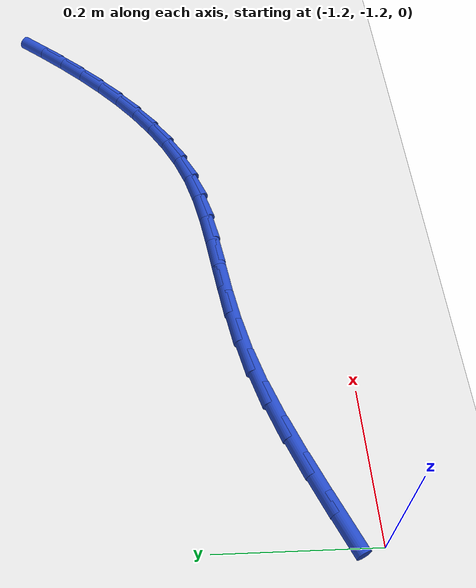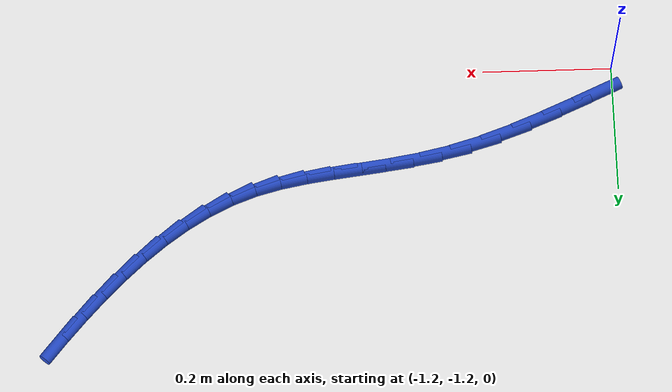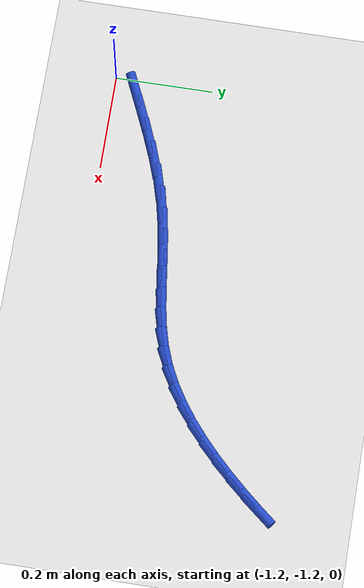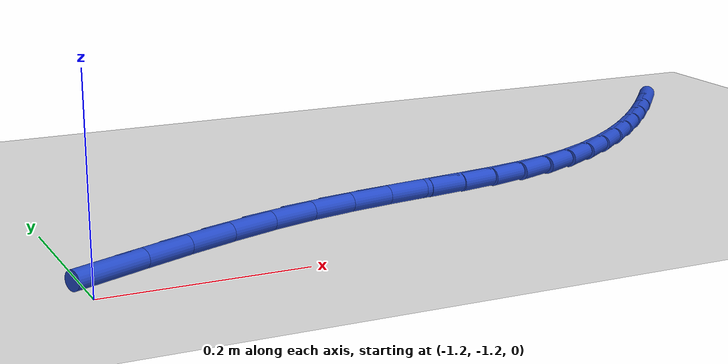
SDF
<sdf version="1.6">
 <world name="default">
  <model name="ground_plane">
   <static>1</static>
   <link name="link">
    <collision name="collision">
     <geometry><plane><normal>0 0 1</normal><size>100 100</size></plane></geometry>
     <surface><friction><ode><mu>100</mu><mu2>50</mu2></ode></friction></surface>
    </collision>
    <visual name="visual">
     <cast_shadows>0</cast_shadows>
     <geometry><plane><normal>0 0 1</normal><size>100 100</size></plane></geometry>
     <material>
      <script><uri>file://media/materials/scripts/gazebo.material</uri><name>Gazebo/WhiteGlow</name></script>
     </material>
    </visual>
   </link>
  </model>
  <model name="line">
   <link name="link_129">
    <pose>-1.174696860551929 -1.1556610961748601 0.01 0 1.57 0.42342281866971737</pose>
    <collision name="collision">
     <geometry><cylinder><radius>0.01</radius><length>0.08</length></cylinder></geometry>
    </collision>
    <visual name="visual">
     <material>
      <script><name>Gazebo/Blue</name><uri>file://media/materials/scripts/gazebo.material</uri></script>
     </material>
     <geometry><cylinder><radius>0.01</radius><length>0.08</length></cylinder></geometry>
    </visual>
   </link>
   <link name="link_130">
    <pose>-1.12668299162848 -1.1340220007801287 0.01 0 1.57 0.41097470097350264</pose>
    <collision name="collision">
     <geometry><cylinder><radius>0.01</radius><length>0.08</length></cylinder></geometry>
    </collision>
    <visual name="visual">
     <material>
      <script><name>Gazebo/Blue</name><uri>file://media/materials/scripts/gazebo.material</uri></script>
     </material>
     <geometry><cylinder><radius>0.01</radius><length>0.08</length></cylinder></geometry>
    </visual>
   </link>
   <link name="link_131">
    <pose>-1.0783632725105083 -1.1129647251503423 0.01 0 1.57 0.38424752020211056</pose>
    <collision name="collision">
     <geometry><cylinder><radius>0.01</radius><length>0.08</length></cylinder></geometry>
    </collision>
    <visual name="visual">
     <material>
      <script><name>Gazebo/Blue</name><uri>file://media/materials/scripts/gazebo.material</uri></script>
     </material>
     <geometry><cylinder><radius>0.01</radius><length>0.08</length></cylinder></geometry>
    </visual>
   </link>
   <link name="link_132">
    <pose>-1.0301511296717447 -1.0934703259775171 0.01 0 1.57 0.3414966517541293</pose>
    <collision name="collision">
     <geometry><cylinder><radius>0.01</radius><length>0.08</length></cylinder></geometry>
    </collision>
    <visual name="visual">
     <material>
      <script><name>Gazebo/Blue</name><uri>file://media/materials/scripts/gazebo.material</uri></script>
     </material>
     <geometry><cylinder><radius>0.01</radius><length>0.08</length></cylinder></geometry>
    </visual>
   </link>
   <link name="link_133">
    <pose>-0.9824599895859162 -1.0765198599536692 0.01 0 1.57 0.28022602365844973</pose>
    <collision name="collision">
     <geometry><cylinder><radius>0.01</radius><length>0.08</length></cylinder></geometry>
    </collision>
    <visual name="visual">
     <material>
      <script><name>Gazebo/Blue</name><uri>file://media/materials/scripts/gazebo.material</uri></script>
     </material>
     <geometry><cylinder><radius>0.01</radius><length>0.08</length></cylinder></geometry>
    </visual>
   </link>
   <link name="link_134">
    <pose>-0.9356966319629575 -1.0630614098380091 0.01 0 1.57 0.2145163283223794</pose>
    <collision name="collision">
     <geometry><cylinder><radius>0.01</radius><length>0.08</length></cylinder></geometry>
    </collision>
    <visual name="visual">
     <material>
      <script><name>Gazebo/Blue</name><uri>file://media/materials/scripts/gazebo.material</uri></script>
     </material>
     <geometry><cylinder><radius>0.01</radius><length>0.08</length></cylinder></geometry>
    </visual>
   </link>
   <link name="link_135">
    <pose>-0.8900824796657185 -1.053123521542755 0.01 0 1.57 0.16514277305964997</pose>
    <collision name="collision">
     <geometry><cylinder><radius>0.01</radius><length>0.08</length></cylinder></geometry>
    </collision>
    <visual name="visual">
     <material>
      <script><name>Gazebo/Blue</name><uri>file://media/materials/scripts/gazebo.material</uri></script>
     </material>
     <geometry><cylinder><radius>0.01</radius><length>0.08</length></cylinder></geometry>
    </visual>
   </link>
   <link name="link_136">
    <pose>-0.8456335274415968 -1.045715632570928 0.01 0 1.57 0.13597688428668567</pose>
    <collision name="collision">
     <geometry><cylinder><radius>0.01</radius><length>0.08</length></cylinder></geometry>
    </collision>
    <visual name="visual">
     <material>
      <script><name>Gazebo/Blue</name><uri>file://media/materials/scripts/gazebo.material</uri></script>
     </material>
     <geometry><cylinder><radius>0.01</radius><length>0.08</length></cylinder></geometry>
    </visual>
   </link>
   <link name="link_137">
    <pose>-0.8023550957139709 -1.039794226167811 0.01 0 1.57 0.1293942101523799</pose>
    <collision name="collision">
     <geometry><cylinder><radius>0.01</radius><length>0.08</length></cylinder></geometry>
    </collision>
    <visual name="visual">
     <material>
      <script><name>Gazebo/Blue</name><uri>file://media/materials/scripts/gazebo.material</uri></script>
     </material>
     <geometry><cylinder><radius>0.01</radius><length>0.08</length></cylinder></geometry>
    </visual>
   </link>
   <link name="link_138">
    <pose>-0.7602525049062165 -1.0343157855786875 0.01 0 1.57 0.1474742600798231</pose>
    <collision name="collision">
     <geometry><cylinder><radius>0.01</radius><length>0.08</length></cylinder></geometry>
    </collision>
    <visual name="visual">
     <material>
      <script><name>Gazebo/Blue</name><uri>file://media/materials/scripts/gazebo.material</uri></script>
     </material>
     <geometry><cylinder><radius>0.01</radius><length>0.08</length></cylinder></geometry>
    </visual>
   </link>
   <link name="link_139">
    <pose>-0.7193310754417112 -1.0282367940488406 0.01 0 1.57 0.19197088671320897</pose>
    <collision name="collision">
     <geometry><cylinder><radius>0.01</radius><length>0.08</length></cylinder></geometry>
    </collision>
    <visual name="visual">
     <material>
      <script><name>Gazebo/Blue</name><uri>file://media/materials/scripts/gazebo.material</uri></script>
     </material>
     <geometry><cylinder><radius>0.01</radius><length>0.08</length></cylinder></geometry>
    </visual>
   </link>
   <link name="link_140">
    <pose>-0.6795961277438317 -1.0205137348235536 0.01 0 1.57 0.2638084245488527</pose>
    <collision name="collision">
     <geometry><cylinder><radius>0.01</radius><length>0.08</length></cylinder></geometry>
    </collision>
    <visual name="visual">
     <material>
      <script><name>Gazebo/Blue</name><uri>file://media/materials/scripts/gazebo.material</uri></script>
     </material>
     <geometry><cylinder><radius>0.01</radius><length>0.08</length></cylinder></geometry>
    </visual>
   </link>
   <link name="link_141">
    <pose>-0.6410529822359549 -1.0101030911481095 0.01 0 1.57 0.3604388641304882</pose>
    <collision name="collision">
     <geometry><cylinder><radius>0.01</radius><length>0.08</length></cylinder></geometry>
    </collision>
    <visual name="visual">
     <material>
      <script><name>Gazebo/Blue</name><uri>file://media/materials/scripts/gazebo.material</uri></script>
     </material>
     <geometry><cylinder><radius>0.01</radius><length>0.08</length></cylinder></geometry>
    </visual>
   </link>
   <link name="link_142">
    <pose>-0.6037042129830659 -0.9960261915006842 0.01 0 1.57 0.4598211313779676</pose>
    <collision name="collision">
     <geometry><cylinder><radius>0.01</radius><length>0.08</length></cylinder></geometry>
    </collision>
    <visual name="visual">
     <material>
      <script><name>Gazebo/Blue</name><uri>file://media/materials/scripts/gazebo.material</uri></script>
     </material>
     <geometry><cylinder><radius>0.01</radius><length>0.08</length></cylinder></geometry>
    </visual>
   </link>
   <link name="link_143">
    <pose>-0.5675184404133506 -0.9781060556074604 0.01 0 1.57 0.5477908907885602</pose>
    <collision name="collision">
     <geometry><cylinder><radius>0.01</radius><length>0.08</length></cylinder></geometry>
    </collision>
    <visual name="visual">
     <material>
      <script><name>Gazebo/Blue</name><uri>file://media/materials/scripts/gazebo.material</uri></script>
     </material>
     <geometry><cylinder><radius>0.01</radius><length>0.08</length></cylinder></geometry>
    </visual>
   </link>
   <link name="link_144">
    <pose>-0.5324413767024962 -0.9567065979930446 0.01 0 1.57 0.6241800605756328</pose>
    <collision name="collision">
     <geometry><cylinder><radius>0.01</radius><length>0.08</length></cylinder></geometry>
    </collision>
    <visual name="visual">
     <material>
      <script><name>Gazebo/Blue</name><uri>file://media/materials/scripts/gazebo.material</uri></script>
     </material>
     <geometry><cylinder><radius>0.01</radius><length>0.08</length></cylinder></geometry>
    </visual>
   </link>
   <link name="link_145">
    <pose>-0.49841830453689034 -0.9322018740048049 0.01 0 1.57 0.6896433004394829</pose>
    <collision name="collision">
     <geometry><cylinder><radius>0.01</radius><length>0.08</length></cylinder></geometry>
    </collision>
    <visual name="visual">
     <material>
      <script><name>Gazebo/Blue</name><uri>file://media/materials/scripts/gazebo.material</uri></script>
     </material>
     <geometry><cylinder><radius>0.01</radius><length>0.08</length></cylinder></geometry>
    </visual>
   </link>
   <link name="link_146">
    <pose>-0.46539450660292114 -0.9049659389901102 0.01 0 1.57 0.7451077311073375</pose>
    <collision name="collision">
     <geometry><cylinder><radius>0.01</radius><length>0.08</length></cylinder></geometry>
    </collision>
    <visual name="visual">
     <material>
      <script><name>Gazebo/Blue</name><uri>file://media/materials/scripts/gazebo.material</uri></script>
     </material>
     <geometry><cylinder><radius>0.01</radius><length>0.08</length></cylinder></geometry>
    </visual>
   </link>
   <link name="link_147">
    <pose>-0.4333152655869756 -0.8753728482963286 0.01 0 1.57 0.7915605320273255</pose>
    <collision name="collision">
     <geometry><cylinder><radius>0.01</radius><length>0.08</length></cylinder></geometry>
    </collision>
    <visual name="visual">
     <material>
      <script><name>Gazebo/Blue</name><uri>file://media/materials/scripts/gazebo.material</uri></script>
     </material>
     <geometry><cylinder><radius>0.01</radius><length>0.08</length></cylinder></geometry>
    </visual>
   </link>
   <link name="link_148">
    <pose>-0.40212586417544277 -0.8437966572708293 0.01 0 1.57 0.8299229899232747</pose>
    <collision name="collision">
     <geometry><cylinder><radius>0.01</radius><length>0.08</length></cylinder></geometry>
    </collision>
    <visual name="visual">
     <material>
      <script><name>Gazebo/Blue</name><uri>file://media/materials/scripts/gazebo.material</uri></script>
     </material>
     <geometry><cylinder><radius>0.01</radius><length>0.08</length></cylinder></geometry>
    </visual>
   </link>
   <link name="link_149">
    <pose>-0.3717715850547099 -0.8106114212609806 0.01 0 1.57 0.8609851051592574</pose>
    <collision name="collision">
     <geometry><cylinder><radius>0.01</radius><length>0.08</length></cylinder></geometry>
    </collision>
    <visual name="visual">
     <material>
      <script><name>Gazebo/Blue</name><uri>file://media/materials/scripts/gazebo.material</uri></script>
     </material>
     <geometry><cylinder><radius>0.01</radius><length>0.08</length></cylinder></geometry>
    </visual>
   </link>
   <link name="link_150">
    <pose>-0.3421977109111649 -0.776191195614151 0.01 0 1.57 0.8853761874539525</pose>
    <collision name="collision">
     <geometry><cylinder><radius>0.01</radius><length>0.08</length></cylinder></geometry>
    </collision>
    <visual name="visual">
     <material>
      <script><name>Gazebo/Blue</name><uri>file://media/materials/scripts/gazebo.material</uri></script>
     </material>
     <geometry><cylinder><radius>0.01</radius><length>0.08</length></cylinder></geometry>
    </visual>
   </link>
  </model>
 </world>
</sdf>
